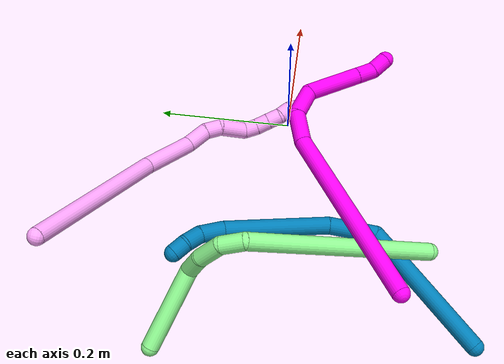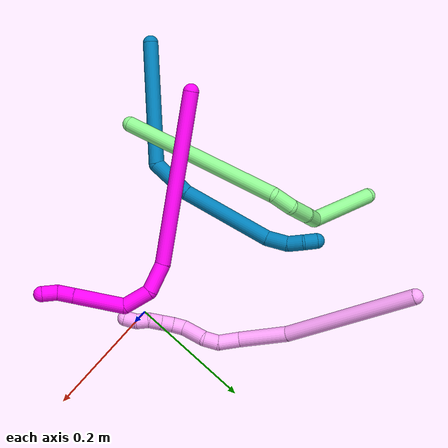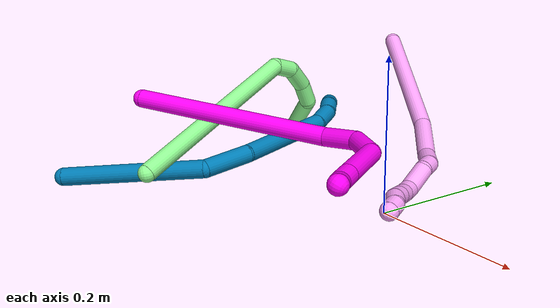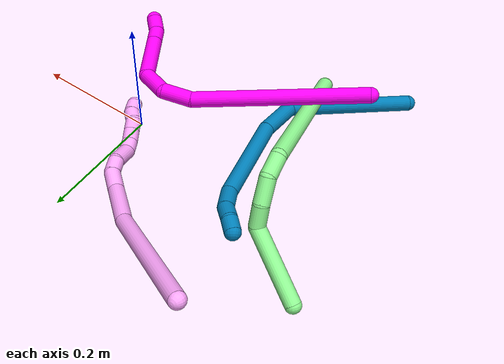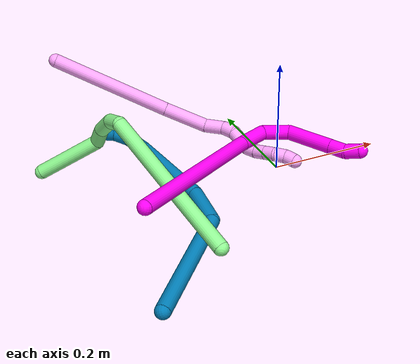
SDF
<sdf version="1.7">
 <world name="default">
  <model name="4">
   <static>0</static>
   <link name="4">
    <collision name="collision-cylinder-e_1_1_4">
     <pose>0.078679 -0.041576 -0.064684 2.57033 0.796873 1.92335</pose>
     <geometry><cylinder><radius>0.0125</radius><length>0.220027</length></cylinder></geometry>
     <surface>
      <friction><ode><mu>1.16</mu><mu2>1.16</mu2><slip1>0</slip1><slip2>0</slip2></ode></friction>
      <contact><ode><kp>1e+06</kp><kd>1</kd><max_vel>0</max_vel><min_depth>0.001</min_depth></ode></contact>
     </surface>
    </collision>
    <visual name="visual-cylinder-e_1_1_4">
     <pose>0.078679 -0.041576 -0.064684 2.57033 0.796873 1.92335</pose>
     <geometry><cylinder><radius>0.0125</radius><length>0.220027</length></cylinder></geometry>
     <material><ambient>1 0.65098 0.996078 1</ambient></material>
    </visual>
    <collision name="collision-cylinder-e_2_4_5">
     <pose>0.179528 -0.10147 -0.157598 2.566 0.582556 1.58351</pose>
     <geometry><cylinder><radius>0.0125</radius><length>0.080597</length></cylinder></geometry>
     <surface>
      <friction><ode><mu>1.16</mu><mu2>1.16</mu2><slip1>0</slip1><slip2>0</slip2></ode></friction>
      <contact><ode><kp>1e+06</kp><kd>1</kd><max_vel>0</max_vel><min_depth>0.001</min_depth></ode></contact>
     </surface>
    </collision>
    <visual name="visual-cylinder-e_2_4_5">
     <pose>0.179528 -0.10147 -0.157598 2.566 0.582556 1.58351</pose>
     <geometry><cylinder><radius>0.0125</radius><length>0.080597</length></cylinder></geometry>
     <material><ambient>1 0.65098 0.996078 1</ambient></material>
    </visual>
    <collision name="collision-cylinder-e_3_5_6">
     <pose>0.208251 -0.131795 -0.196781 2.31035 0.383174 0.828182</pose>
     <geometry><cylinder><radius>0.0125</radius><length>0.035049</length></cylinder></geometry>
     <surface>
      <friction><ode><mu>1.16</mu><mu2>1.16</mu2><slip1>0</slip1><slip2>0</slip2></ode></friction>
      <contact><ode><kp>1e+06</kp><kd>1</kd><max_vel>0</max_vel><min_depth>0.001</min_depth></ode></contact>
     </surface>
    </collision>
    <visual name="visual-cylinder-e_3_5_6">
     <pose>0.208251 -0.131795 -0.196781 2.31035 0.383174 0.828182</pose>
     <geometry><cylinder><radius>0.0125</radius><length>0.035049</length></cylinder></geometry>
     <material><ambient>1 0.65098 0.996078 1</ambient></material>
    </visual>
    <collision name="collision-cylinder-e_4_6_7">
     <pose>0.215924 -0.14954 -0.218199 2.64004 0.093663 0.361897</pose>
     <geometry><cylinder><radius>0.0125</radius><length>0.023972</length></cylinder></geometry>
     <surface>
      <friction><ode><mu>1.16</mu><mu2>1.16</mu2><slip1>0</slip1><slip2>0</slip2></ode></friction>
      <contact><ode><kp>1e+06</kp><kd>1</kd><max_vel>0</max_vel><min_depth>0.001</min_depth></ode></contact>
     </surface>
    </collision>
    <visual name="visual-cylinder-e_4_6_7">
     <pose>0.215924 -0.14954 -0.218199 2.64004 0.093663 0.361897</pose>
     <geometry><cylinder><radius>0.0125</radius><length>0.023972</length></cylinder></geometry>
     <material><ambient>1 0.65098 0.996078 1</ambient></material>
    </visual>
    <collision name="collision-cylinder-e_5_7_8">
     <pose>0.221472 -0.156904 -0.248244 3.05876 0.221641 2.42862</pose>
     <geometry><cylinder><radius>0.0125</radius><length>0.040283</length></cylinder></geometry>
     <surface>
      <friction><ode><mu>1.16</mu><mu2>1.16</mu2><slip1>0</slip1><slip2>0</slip2></ode></friction>
      <contact><ode><kp>1e+06</kp><kd>1</kd><max_vel>0</max_vel><min_depth>0.001</min_depth></ode></contact>
     </surface>
    </collision>
    <visual name="visual-cylinder-e_5_7_8">
     <pose>0.221472 -0.156904 -0.248244 3.05876 0.221641 2.42862</pose>
     <geometry><cylinder><radius>0.0125</radius><length>0.040283</length></cylinder></geometry>
     <material><ambient>1 0.65098 0.996078 1</ambient></material>
    </visual>
    <collision name="collision-cylinder-e_6_8_9">
     <pose>0.22655 -0.163722 -0.27635 2.59449 0.065027 0.230808</pose>
     <geometry><cylinder><radius>0.0125</radius><length>0.020005</length></cylinder></geometry>
     <surface>
      <friction><ode><mu>1.16</mu><mu2>1.16</mu2><slip1>0</slip1><slip2>0</slip2></ode></friction>
      <contact><ode><kp>1e+06</kp><kd>1</kd><max_vel>0</max_vel><min_depth>0.001</min_depth></ode></contact>
     </surface>
    </collision>
    <visual name="visual-cylinder-e_6_8_9">
     <pose>0.22655 -0.163722 -0.27635 2.59449 0.065027 0.230808</pose>
     <geometry><cylinder><radius>0.0125</radius><length>0.020005</length></cylinder></geometry>
     <material><ambient>1 0.65098 0.996078 1</ambient></material>
    </visual>
    <collision name="collision-cylinder-e_7_9_10">
     <pose>0.227269 -0.175505 -0.292435 2.42463 0.006933 0.018504</pose>
     <geometry><cylinder><radius>0.0125</radius><length>0.020061</length></cylinder></geometry>
     <surface>
      <friction><ode><mu>1.16</mu><mu2>1.16</mu2><slip1>0</slip1><slip2>0</slip2></ode></friction>
      <contact><ode><kp>1e+06</kp><kd>1</kd><max_vel>0</max_vel><min_depth>0.001</min_depth></ode></contact>
     </surface>
    </collision>
    <visual name="visual-cylinder-e_7_9_10">
     <pose>0.227269 -0.175505 -0.292435 2.42463 0.006933 0.018504</pose>
     <geometry><cylinder><radius>0.0125</radius><length>0.020061</length></cylinder></geometry>
     <material><ambient>1 0.65098 0.996078 1</ambient></material>
    </visual>
    <collision name="collision-cylinder-e_8_10_11">
     <pose>0.227308 -0.188627 -0.30757 2.42998 -0.003076 -0.008278</pose>
     <geometry><cylinder><radius>0.0125</radius><length>0.020002</length></cylinder></geometry>
     <surface>
      <friction><ode><mu>1.16</mu><mu2>1.16</mu2><slip1>0</slip1><slip2>0</slip2></ode></friction>
      <contact><ode><kp>1e+06</kp><kd>1</kd><max_vel>0</max_vel><min_depth>0.001</min_depth></ode></contact>
     </surface>
    </collision>
    <visual name="visual-cylinder-e_8_10_11">
     <pose>0.227308 -0.188627 -0.30757 2.42998 -0.003076 -0.008278</pose>
     <geometry><cylinder><radius>0.0125</radius><length>0.020002</length></cylinder></geometry>
     <material><ambient>1 0.65098 0.996078 1</ambient></material>
    </visual>
    <collision name="collision-cylinder-e_9_11_12">
     <pose>0.230968 -0.201612 -0.321833 2.37405 0.377933 0.884661</pose>
     <geometry><cylinder><radius>0.0125</radius><length>0.02</length></cylinder></geometry>
     <surface>
      <friction><ode><mu>1.16</mu><mu2>1.16</mu2><slip1>0</slip1><slip2>0</slip2></ode></friction>
      <contact><ode><kp>1e+06</kp><kd>1</kd><max_vel>0</max_vel><min_depth>0.001</min_depth></ode></contact>
     </surface>
    </collision>
    <visual name="visual-cylinder-e_9_11_12">
     <pose>0.230968 -0.201612 -0.321833 2.37405 0.377933 0.884661</pose>
     <geometry><cylinder><radius>0.0125</radius><length>0.02</length></cylinder></geometry>
     <material><ambient>1 0.65098 0.996078 1</ambient></material>
    </visual>
    <collision name="collision-cylinder-e_10_12_2">
     <pose>0.236213 -0.212472 -0.337364 2.67935 0.156136 0.641857</pose>
     <geometry><cylinder><radius>0.0125</radius><length>0.020003</length></cylinder></geometry>
     <surface>
      <friction><ode><mu>1.16</mu><mu2>1.16</mu2><slip1>0</slip1><slip2>0</slip2></ode></friction>
      <contact><ode><kp>1e+06</kp><kd>1</kd><max_vel>0</max_vel><min_depth>0.001</min_depth></ode></contact>
     </surface>
    </collision>
    <visual name="visual-cylinder-e_10_12_2">
     <pose>0.236213 -0.212472 -0.337364 2.67935 0.156136 0.641857</pose>
     <geometry><cylinder><radius>0.0125</radius><length>0.020003</length></cylinder></geometry>
     <material><ambient>1 0.65098 0.996078 1</ambient></material>
    </visual>
    <collision name="collision-sphere-2">
     <pose>0.237768 -0.216878 -0.346208 0 -0 0</pose>
     <geometry><sphere><radius>0.0125</radius></sphere></geometry>
     <surface>
      <friction><ode><mu>1.16</mu><mu2>1.16</mu2><slip1>0</slip1><slip2>0</slip2></ode></friction>
      <contact><ode><kp>1e+06</kp><kd>1</kd><max_vel>0</max_vel><min_depth>0.001</min_depth></ode></contact>
     </surface>
    </collision>
    <visual name="visual-sphere-2">
     <pose>0.237768 -0.216878 -0.346208 0 -0 0</pose>
     <geometry><sphere><radius>0.0125</radius></sphere></geometry>
     <material><ambient>1 0.65098 0.996078 1</ambient></material>
    </visual>
    <collision name="collision-sphere-12">
     <pose>0.234658 -0.208066 -0.328521 0 -0 0</pose>
     <geometry><sphere><radius>0.0125</radius></sphere></geometry>
     <surface>
      <friction><ode><mu>1.16</mu><mu2>1.16</mu2><slip1>0</slip1><slip2>0</slip2></ode></friction>
      <contact><ode><kp>1e+06</kp><kd>1</kd><max_vel>0</max_vel><min_depth>0.001</min_depth></ode></contact>
     </surface>
    </collision>
    <visual name="visual-sphere-12">
     <pose>0.234658 -0.208066 -0.328521 0 -0 0</pose>
     <geometry><sphere><radius>0.0125</radius></sphere></geometry>
     <material><ambient>1 0.65098 0.996078 1</ambient></material>
    </visual>
    <collision name="collision-sphere-11">
     <pose>0.227277 -0.195158 -0.315144 0 -0 0</pose>
     <geometry><sphere><radius>0.0125</radius></sphere></geometry>
     <surface>
      <friction><ode><mu>1.16</mu><mu2>1.16</mu2><slip1>0</slip1><slip2>0</slip2></ode></friction>
      <contact><ode><kp>1e+06</kp><kd>1</kd><max_vel>0</max_vel><min_depth>0.001</min_depth></ode></contact>
     </surface>
    </collision>
    <visual name="visual-sphere-11">
     <pose>0.227277 -0.195158 -0.315144 0 -0 0</pose>
     <geometry><sphere><radius>0.0125</radius></sphere></geometry>
     <material><ambient>1 0.65098 0.996078 1</ambient></material>
    </visual>
    <collision name="collision-sphere-10">
     <pose>0.227339 -0.182096 -0.299996 0 -0 0</pose>
     <geometry><sphere><radius>0.0125</radius></sphere></geometry>
     <surface>
      <friction><ode><mu>1.16</mu><mu2>1.16</mu2><slip1>0</slip1><slip2>0</slip2></ode></friction>
      <contact><ode><kp>1e+06</kp><kd>1</kd><max_vel>0</max_vel><min_depth>0.001</min_depth></ode></contact>
     </surface>
    </collision>
    <visual name="visual-sphere-10">
     <pose>0.227339 -0.182096 -0.299996 0 -0 0</pose>
     <geometry><sphere><radius>0.0125</radius></sphere></geometry>
     <material><ambient>1 0.65098 0.996078 1</ambient></material>
    </visual>
    <collision name="collision-sphere-9">
     <pose>0.2272 -0.168914 -0.284874 0 -0 0</pose>
     <geometry><sphere><radius>0.0125</radius></sphere></geometry>
     <surface>
      <friction><ode><mu>1.16</mu><mu2>1.16</mu2><slip1>0</slip1><slip2>0</slip2></ode></friction>
      <contact><ode><kp>1e+06</kp><kd>1</kd><max_vel>0</max_vel><min_depth>0.001</min_depth></ode></contact>
     </surface>
    </collision>
    <visual name="visual-sphere-9">
     <pose>0.2272 -0.168914 -0.284874 0 -0 0</pose>
     <geometry><sphere><radius>0.0125</radius></sphere></geometry>
     <material><ambient>1 0.65098 0.996078 1</ambient></material>
    </visual>
    <collision name="collision-sphere-4">
     <pose>0.157358 -0.083152 -0.129369 0 -0 0</pose>
     <geometry><sphere><radius>0.0125</radius></sphere></geometry>
     <surface>
      <friction><ode><mu>1.16</mu><mu2>1.16</mu2><slip1>0</slip1><slip2>0</slip2></ode></friction>
      <contact><ode><kp>1e+06</kp><kd>1</kd><max_vel>0</max_vel><min_depth>0.001</min_depth></ode></contact>
     </surface>
    </collision>
    <visual name="visual-sphere-4">
     <pose>0.157358 -0.083152 -0.129369 0 -0 0</pose>
     <geometry><sphere><radius>0.0125</radius></sphere></geometry>
     <material><ambient>1 0.65098 0.996078 1</ambient></material>
    </visual>
    <collision name="collision-sphere-1">
     <geometry><sphere><radius>0.0125</radius></sphere></geometry>
     <surface>
      <friction><ode><mu>1.16</mu><mu2>1.16</mu2><slip1>0</slip1><slip2>0</slip2></ode></friction>
      <contact><ode><kp>1e+06</kp><kd>1</kd><max_vel>0</max_vel><min_depth>0.001</min_depth></ode></contact>
     </surface>
    </collision>
    <visual name="visual-sphere-1">
     <geometry><sphere><radius>0.0125</radius></sphere></geometry>
     <material><ambient>1 0.65098 0.996078 1</ambient></material>
    </visual>
    <collision name="collision-sphere-8">
     <pose>0.2259 -0.158529 -0.267825 0 -0 0</pose>
     <geometry><sphere><radius>0.0125</radius></sphere></geometry>
     <surface>
      <friction><ode><mu>1.16</mu><mu2>1.16</mu2><slip1>0</slip1><slip2>0</slip2></ode></friction>
      <contact><ode><kp>1e+06</kp><kd>1</kd><max_vel>0</max_vel><min_depth>0.001</min_depth></ode></contact>
     </surface>
    </collision>
    <visual name="visual-sphere-8">
     <pose>0.2259 -0.158529 -0.267825 0 -0 0</pose>
     <geometry><sphere><radius>0.0125</radius></sphere></geometry>
     <material><ambient>1 0.65098 0.996078 1</ambient></material>
    </visual>
    <collision name="collision-sphere-5">
     <pose>0.201699 -0.119788 -0.185827 0 -0 0</pose>
     <geometry><sphere><radius>0.0125</radius></sphere></geometry>
     <surface>
      <friction><ode><mu>1.16</mu><mu2>1.16</mu2><slip1>0</slip1><slip2>0</slip2></ode></friction>
      <contact><ode><kp>1e+06</kp><kd>1</kd><max_vel>0</max_vel><min_depth>0.001</min_depth></ode></contact>
     </surface>
    </collision>
    <visual name="visual-sphere-5">
     <pose>0.201699 -0.119788 -0.185827 0 -0 0</pose>
     <geometry><sphere><radius>0.0125</radius></sphere></geometry>
     <material><ambient>1 0.65098 0.996078 1</ambient></material>
    </visual>
    <collision name="collision-sphere-6">
     <pose>0.214803 -0.143803 -0.207736 0 -0 0</pose>
     <geometry><sphere><radius>0.0125</radius></sphere></geometry>
     <surface>
      <friction><ode><mu>1.16</mu><mu2>1.16</mu2><slip1>0</slip1><slip2>0</slip2></ode></friction>
      <contact><ode><kp>1e+06</kp><kd>1</kd><max_vel>0</max_vel><min_depth>0.001</min_depth></ode></contact>
     </surface>
    </collision>
    <visual name="visual-sphere-6">
     <pose>0.214803 -0.143803 -0.207736 0 -0 0</pose>
     <geometry><sphere><radius>0.0125</radius></sphere></geometry>
     <material><ambient>1 0.65098 0.996078 1</ambient></material>
    </visual>
    <collision name="collision-sphere-7">
     <pose>0.217045 -0.155278 -0.228663 0 -0 0</pose>
     <geometry><sphere><radius>0.0125</radius></sphere></geometry>
     <surface>
      <friction><ode><mu>1.16</mu><mu2>1.16</mu2><slip1>0</slip1><slip2>0</slip2></ode></friction>
      <contact><ode><kp>1e+06</kp><kd>1</kd><max_vel>0</max_vel><min_depth>0.001</min_depth></ode></contact>
     </surface>
    </collision>
    <visual name="visual-sphere-7">
     <pose>0.217045 -0.155278 -0.228663 0 -0 0</pose>
     <geometry><sphere><radius>0.0125</radius></sphere></geometry>
     <material><ambient>1 0.65098 0.996078 1</ambient></material>
    </visual>
    <inertial>
     <pose>0.15232 -0.101404 -0.159588 0 -0 0</pose>
     <mass>0.5</mass>
     <inertia>
      <ixx>0.000446</ixx>
      <ixy>0</ixy>
      <ixz>0</ixz>
      <iyy>0.001219</iyy>
      <iyz>0</iyz>
      <izz>-0.000329</izz>
     </inertia>
    </inertial>
   </link>
   <pose>-0.307539 0.288501 0.148064 -1.09011 0.721042 0.376698</pose>
  </model>
  <model name="9">
   <static>0</static>
   <link name="9">
    <collision name="collision-cylinder-e_1_1_4">
     <pose>-0.089987 0.044322 0.010723 -1.33342 -1.10176 0.900583</pose>
     <geometry><cylinder><radius>0.0125</radius><length>0.201763</length></cylinder></geometry>
     <surface>
      <friction><ode><mu>1.16</mu><mu2>1.16</mu2><slip1>0</slip1><slip2>0</slip2></ode></friction>
      <contact><ode><kp>1e+06</kp><kd>1</kd><max_vel>0</max_vel><min_depth>0.001</min_depth></ode></contact>
     </surface>
    </collision>
    <visual name="visual-cylinder-e_1_1_4">
     <pose>-0.089987 0.044322 0.010723 -1.33342 -1.10176 0.900583</pose>
     <geometry><cylinder><radius>0.0125</radius><length>0.201763</length></cylinder></geometry>
     <material><ambient>0 0.490196 0.709804 1</ambient></material>
    </visual>
    <collision name="collision-cylinder-e_2_4_5">
     <pose>-0.194229 0.110634 0.043094 -0.793251 -0.432786 0.183626</pose>
     <geometry><cylinder><radius>0.0125</radius><length>0.067982</length></cylinder></geometry>
     <surface>
      <friction><ode><mu>1.16</mu><mu2>1.16</mu2><slip1>0</slip1><slip2>0</slip2></ode></friction>
      <contact><ode><kp>1e+06</kp><kd>1</kd><max_vel>0</max_vel><min_depth>0.001</min_depth></ode></contact>
     </surface>
    </collision>
    <visual name="visual-cylinder-e_2_4_5">
     <pose>-0.194229 0.110634 0.043094 -0.793251 -0.432786 0.183626</pose>
     <geometry><cylinder><radius>0.0125</radius><length>0.067982</length></cylinder></geometry>
     <material><ambient>0 0.490196 0.709804 1</ambient></material>
    </visual>
    <collision name="collision-cylinder-e_3_5_6">
     <pose>-0.225002 0.177992 0.121267 -0.676324 -0.224055 0.079084</pose>
     <geometry><cylinder><radius>0.0125</radius><length>0.148677</length></cylinder></geometry>
     <surface>
      <friction><ode><mu>1.16</mu><mu2>1.16</mu2><slip1>0</slip1><slip2>0</slip2></ode></friction>
      <contact><ode><kp>1e+06</kp><kd>1</kd><max_vel>0</max_vel><min_depth>0.001</min_depth></ode></contact>
     </surface>
    </collision>
    <visual name="visual-cylinder-e_3_5_6">
     <pose>-0.225002 0.177992 0.121267 -0.676324 -0.224055 0.079084</pose>
     <geometry><cylinder><radius>0.0125</radius><length>0.148677</length></cylinder></geometry>
     <material><ambient>0 0.490196 0.709804 1</ambient></material>
    </visual>
    <collision name="collision-cylinder-e_4_6_7">
     <pose>-0.240591 0.235403 0.190644 -0.752972 0.052635 -0.020813</pose>
     <geometry><cylinder><radius>0.0125</radius><length>0.035272</length></cylinder></geometry>
     <surface>
      <friction><ode><mu>1.16</mu><mu2>1.16</mu2><slip1>0</slip1><slip2>0</slip2></ode></friction>
      <contact><ode><kp>1e+06</kp><kd>1</kd><max_vel>0</max_vel><min_depth>0.001</min_depth></ode></contact>
     </surface>
    </collision>
    <visual name="visual-cylinder-e_4_6_7">
     <pose>-0.240591 0.235403 0.190644 -0.752972 0.052635 -0.020813</pose>
     <geometry><cylinder><radius>0.0125</radius><length>0.035272</length></cylinder></geometry>
     <material><ambient>0 0.490196 0.709804 1</ambient></material>
    </visual>
    <collision name="collision-cylinder-e_5_7_8">
     <pose>-0.234719 0.25471 0.212593 -0.673678 0.401611 -0.142319</pose>
     <geometry><cylinder><radius>0.0125</radius><length>0.025298</length></cylinder></geometry>
     <surface>
      <friction><ode><mu>1.16</mu><mu2>1.16</mu2><slip1>0</slip1><slip2>0</slip2></ode></friction>
      <contact><ode><kp>1e+06</kp><kd>1</kd><max_vel>0</max_vel><min_depth>0.001</min_depth></ode></contact>
     </surface>
    </collision>
    <visual name="visual-cylinder-e_5_7_8">
     <pose>-0.234719 0.25471 0.212593 -0.673678 0.401611 -0.142319</pose>
     <geometry><cylinder><radius>0.0125</radius><length>0.025298</length></cylinder></geometry>
     <material><ambient>0 0.490196 0.709804 1</ambient></material>
    </visual>
    <collision name="collision-cylinder-e_6_8_2">
     <pose>-0.226307 0.265254 0.231049 -0.337278 0.336389 -0.057802</pose>
     <geometry><cylinder><radius>0.0125</radius><length>0.021007</length></cylinder></geometry>
     <surface>
      <friction><ode><mu>1.16</mu><mu2>1.16</mu2><slip1>0</slip1><slip2>0</slip2></ode></friction>
      <contact><ode><kp>1e+06</kp><kd>1</kd><max_vel>0</max_vel><min_depth>0.001</min_depth></ode></contact>
     </surface>
    </collision>
    <visual name="visual-cylinder-e_6_8_2">
     <pose>-0.226307 0.265254 0.231049 -0.337278 0.336389 -0.057802</pose>
     <geometry><cylinder><radius>0.0125</radius><length>0.021007</length></cylinder></geometry>
     <material><ambient>0 0.490196 0.709804 1</ambient></material>
    </visual>
    <collision name="collision-sphere-2">
     <pose>-0.22284 0.268535 0.240405 0 -0 0</pose>
     <geometry><sphere><radius>0.0125</radius></sphere></geometry>
     <surface>
      <friction><ode><mu>1.16</mu><mu2>1.16</mu2><slip1>0</slip1><slip2>0</slip2></ode></friction>
      <contact><ode><kp>1e+06</kp><kd>1</kd><max_vel>0</max_vel><min_depth>0.001</min_depth></ode></contact>
     </surface>
    </collision>
    <visual name="visual-sphere-2">
     <pose>-0.22284 0.268535 0.240405 0 -0 0</pose>
     <geometry><sphere><radius>0.0125</radius></sphere></geometry>
     <material><ambient>0 0.490196 0.709804 1</ambient></material>
    </visual>
    <collision name="collision-sphere-4">
     <pose>-0.179973 0.088645 0.021446 0 -0 0</pose>
     <geometry><sphere><radius>0.0125</radius></sphere></geometry>
     <surface>
      <friction><ode><mu>1.16</mu><mu2>1.16</mu2><slip1>0</slip1><slip2>0</slip2></ode></friction>
      <contact><ode><kp>1e+06</kp><kd>1</kd><max_vel>0</max_vel><min_depth>0.001</min_depth></ode></contact>
     </surface>
    </collision>
    <visual name="visual-sphere-4">
     <pose>-0.179973 0.088645 0.021446 0 -0 0</pose>
     <geometry><sphere><radius>0.0125</radius></sphere></geometry>
     <material><ambient>0 0.490196 0.709804 1</ambient></material>
    </visual>
    <collision name="collision-sphere-1">
     <geometry><sphere><radius>0.0125</radius></sphere></geometry>
     <surface>
      <friction><ode><mu>1.16</mu><mu2>1.16</mu2><slip1>0</slip1><slip2>0</slip2></ode></friction>
      <contact><ode><kp>1e+06</kp><kd>1</kd><max_vel>0</max_vel><min_depth>0.001</min_depth></ode></contact>
     </surface>
    </collision>
    <visual name="visual-sphere-1">
     <geometry><sphere><radius>0.0125</radius></sphere></geometry>
     <material><ambient>0 0.490196 0.709804 1</ambient></material>
    </visual>
    <collision name="collision-sphere-8">
     <pose>-0.229774 0.261973 0.221692 0 -0 0</pose>
     <geometry><sphere><radius>0.0125</radius></sphere></geometry>
     <surface>
      <friction><ode><mu>1.16</mu><mu2>1.16</mu2><slip1>0</slip1><slip2>0</slip2></ode></friction>
      <contact><ode><kp>1e+06</kp><kd>1</kd><max_vel>0</max_vel><min_depth>0.001</min_depth></ode></contact>
     </surface>
    </collision>
    <visual name="visual-sphere-8">
     <pose>-0.229774 0.261973 0.221692 0 -0 0</pose>
     <geometry><sphere><radius>0.0125</radius></sphere></geometry>
     <material><ambient>0 0.490196 0.709804 1</ambient></material>
    </visual>
    <collision name="collision-sphere-5">
     <pose>-0.208485 0.132624 0.064741 0 -0 0</pose>
     <geometry><sphere><radius>0.0125</radius></sphere></geometry>
     <surface>
      <friction><ode><mu>1.16</mu><mu2>1.16</mu2><slip1>0</slip1><slip2>0</slip2></ode></friction>
      <contact><ode><kp>1e+06</kp><kd>1</kd><max_vel>0</max_vel><min_depth>0.001</min_depth></ode></contact>
     </surface>
    </collision>
    <visual name="visual-sphere-5">
     <pose>-0.208485 0.132624 0.064741 0 -0 0</pose>
     <geometry><sphere><radius>0.0125</radius></sphere></geometry>
     <material><ambient>0 0.490196 0.709804 1</ambient></material>
    </visual>
    <collision name="collision-sphere-6">
     <pose>-0.241519 0.22336 0.177793 0 -0 0</pose>
     <geometry><sphere><radius>0.0125</radius></sphere></geometry>
     <surface>
      <friction><ode><mu>1.16</mu><mu2>1.16</mu2><slip1>0</slip1><slip2>0</slip2></ode></friction>
      <contact><ode><kp>1e+06</kp><kd>1</kd><max_vel>0</max_vel><min_depth>0.001</min_depth></ode></contact>
     </surface>
    </collision>
    <visual name="visual-sphere-6">
     <pose>-0.241519 0.22336 0.177793 0 -0 0</pose>
     <geometry><sphere><radius>0.0125</radius></sphere></geometry>
     <material><ambient>0 0.490196 0.709804 1</ambient></material>
    </visual>
    <collision name="collision-sphere-7">
     <pose>-0.239663 0.247446 0.203494 0 -0 0</pose>
     <geometry><sphere><radius>0.0125</radius></sphere></geometry>
     <surface>
      <friction><ode><mu>1.16</mu><mu2>1.16</mu2><slip1>0</slip1><slip2>0</slip2></ode></friction>
      <contact><ode><kp>1e+06</kp><kd>1</kd><max_vel>0</max_vel><min_depth>0.001</min_depth></ode></contact>
     </surface>
    </collision>
    <visual name="visual-sphere-7">
     <pose>-0.239663 0.247446 0.203494 0 -0 0</pose>
     <geometry><sphere><radius>0.0125</radius></sphere></geometry>
     <material><ambient>0 0.490196 0.709804 1</ambient></material>
    </visual>
    <inertial>
     <pose>-0.167982 0.126493 0.080158 0 -0 0</pose>
     <mass>0.5</mass>
     <inertia>
      <ixx>0.000754</ixx>
      <ixy>0</ixy>
      <ixz>0</ixz>
      <iyy>0.001113</iyy>
      <iyz>0</iyz>
      <izz>0.00021</izz>
     </inertia>
    </inertial>
   </link>
   <pose>-0.333806 -0.288501 0.011809 2.08923 -0.236943 -2.66682</pose>
  </model>
  <model name="10">
   <static>0</static>
   <link name="10">
    <collision name="collision-cylinder-e_1_1_4">
     <pose>0.018098 0.038619 -0.129779 -2.85236 0.132873 -0.857105</pose>
     <geometry><cylinder><radius>0.0125</radius><length>0.273215</length></cylinder></geometry>
     <surface>
      <friction><ode><mu>1.16</mu><mu2>1.16</mu2><slip1>0</slip1><slip2>0</slip2></ode></friction>
      <contact><ode><kp>1e+06</kp><kd>1</kd><max_vel>0</max_vel><min_depth>0.001</min_depth></ode></contact>
     </surface>
    </collision>
    <visual name="visual-cylinder-e_1_1_4">
     <pose>0.018098 0.038619 -0.129779 -2.85236 0.132873 -0.857105</pose>
     <geometry><cylinder><radius>0.0125</radius><length>0.273215</length></cylinder></geometry>
     <material><ambient>1 0 0.964706 1</ambient></material>
    </visual>
    <collision name="collision-cylinder-e_2_4_5">
     <pose>0.045965 0.080291 -0.281054 -3.00046 0.422832 -2.50531</pose>
     <geometry><cylinder><radius>0.0125</radius><length>0.047616</length></cylinder></geometry>
     <surface>
      <friction><ode><mu>1.16</mu><mu2>1.16</mu2><slip1>0</slip1><slip2>0</slip2></ode></friction>
      <contact><ode><kp>1e+06</kp><kd>1</kd><max_vel>0</max_vel><min_depth>0.001</min_depth></ode></contact>
     </surface>
    </collision>
    <visual name="visual-cylinder-e_2_4_5">
     <pose>0.045965 0.080291 -0.281054 -3.00046 0.422832 -2.50531</pose>
     <geometry><cylinder><radius>0.0125</radius><length>0.047616</length></cylinder></geometry>
     <material><ambient>1 0 0.964706 1</ambient></material>
    </visual>
    <collision name="collision-cylinder-e_3_5_6">
     <pose>0.067347 0.07316 -0.319403 2.59801 0.532799 1.54976</pose>
     <geometry><cylinder><radius>0.0125</radius><length>0.045723</length></cylinder></geometry>
     <surface>
      <friction><ode><mu>1.16</mu><mu2>1.16</mu2><slip1>0</slip1><slip2>0</slip2></ode></friction>
      <contact><ode><kp>1e+06</kp><kd>1</kd><max_vel>0</max_vel><min_depth>0.001</min_depth></ode></contact>
     </surface>
    </collision>
    <visual name="visual-cylinder-e_3_5_6">
     <pose>0.067347 0.07316 -0.319403 2.59801 0.532799 1.54976</pose>
     <geometry><cylinder><radius>0.0125</radius><length>0.045723</length></cylinder></geometry>
     <material><ambient>1 0 0.964706 1</ambient></material>
    </visual>
    <collision name="collision-cylinder-e_4_6_7">
     <pose>0.100092 0.028896 -0.342211 1.74375 0.548351 0.64588</pose>
     <geometry><cylinder><radius>0.0125</radius><length>0.081077</length></cylinder></geometry>
     <surface>
      <friction><ode><mu>1.16</mu><mu2>1.16</mu2><slip1>0</slip1><slip2>0</slip2></ode></friction>
      <contact><ode><kp>1e+06</kp><kd>1</kd><max_vel>0</max_vel><min_depth>0.001</min_depth></ode></contact>
     </surface>
    </collision>
    <visual name="visual-cylinder-e_4_6_7">
     <pose>0.100092 0.028896 -0.342211 1.74375 0.548351 0.64588</pose>
     <geometry><cylinder><radius>0.0125</radius><length>0.081077</length></cylinder></geometry>
     <material><ambient>1 0 0.964706 1</ambient></material>
    </visual>
    <collision name="collision-cylinder-e_5_7_8">
     <pose>0.128246 -0.016489 -0.350183 1.74746 0.548789 0.648658</pose>
     <geometry><cylinder><radius>0.0125</radius><length>0.026924</length></cylinder></geometry>
     <surface>
      <friction><ode><mu>1.16</mu><mu2>1.16</mu2><slip1>0</slip1><slip2>0</slip2></ode></friction>
      <contact><ode><kp>1e+06</kp><kd>1</kd><max_vel>0</max_vel><min_depth>0.001</min_depth></ode></contact>
     </surface>
    </collision>
    <visual name="visual-cylinder-e_5_7_8">
     <pose>0.128246 -0.016489 -0.350183 1.74746 0.548789 0.648658</pose>
     <geometry><cylinder><radius>0.0125</radius><length>0.026924</length></cylinder></geometry>
     <material><ambient>1 0 0.964706 1</ambient></material>
    </visual>
    <collision name="collision-cylinder-e_6_8_2">
     <pose>0.14474 -0.035344 -0.356098 2.04731 0.839696 1.26477</pose>
     <geometry><cylinder><radius>0.0125</radius><length>0.025445</length></cylinder></geometry>
     <surface>
      <friction><ode><mu>1.16</mu><mu2>1.16</mu2><slip1>0</slip1><slip2>0</slip2></ode></friction>
      <contact><ode><kp>1e+06</kp><kd>1</kd><max_vel>0</max_vel><min_depth>0.001</min_depth></ode></contact>
     </surface>
    </collision>
    <visual name="visual-cylinder-e_6_8_2">
     <pose>0.14474 -0.035344 -0.356098 2.04731 0.839696 1.26477</pose>
     <geometry><cylinder><radius>0.0125</radius><length>0.025445</length></cylinder></geometry>
     <material><ambient>1 0 0.964706 1</ambient></material>
    </visual>
    <collision name="collision-sphere-2">
     <pose>0.154211 -0.042892 -0.359995 0 -0 0</pose>
     <geometry><sphere><radius>0.0125</radius></sphere></geometry>
     <surface>
      <friction><ode><mu>1.16</mu><mu2>1.16</mu2><slip1>0</slip1><slip2>0</slip2></ode></friction>
      <contact><ode><kp>1e+06</kp><kd>1</kd><max_vel>0</max_vel><min_depth>0.001</min_depth></ode></contact>
     </surface>
    </collision>
    <visual name="visual-sphere-2">
     <pose>0.154211 -0.042892 -0.359995 0 -0 0</pose>
     <geometry><sphere><radius>0.0125</radius></sphere></geometry>
     <material><ambient>1 0 0.964706 1</ambient></material>
    </visual>
    <collision name="collision-sphere-4">
     <pose>0.036196 0.077237 -0.259559 0 -0 0</pose>
     <geometry><sphere><radius>0.0125</radius></sphere></geometry>
     <surface>
      <friction><ode><mu>1.16</mu><mu2>1.16</mu2><slip1>0</slip1><slip2>0</slip2></ode></friction>
      <contact><ode><kp>1e+06</kp><kd>1</kd><max_vel>0</max_vel><min_depth>0.001</min_depth></ode></contact>
     </surface>
    </collision>
    <visual name="visual-sphere-4">
     <pose>0.036196 0.077237 -0.259559 0 -0 0</pose>
     <geometry><sphere><radius>0.0125</radius></sphere></geometry>
     <material><ambient>1 0 0.964706 1</ambient></material>
    </visual>
    <collision name="collision-sphere-1">
     <geometry><sphere><radius>0.0125</radius></sphere></geometry>
     <surface>
      <friction><ode><mu>1.16</mu><mu2>1.16</mu2><slip1>0</slip1><slip2>0</slip2></ode></friction>
      <contact><ode><kp>1e+06</kp><kd>1</kd><max_vel>0</max_vel><min_depth>0.001</min_depth></ode></contact>
     </surface>
    </collision>
    <visual name="visual-sphere-1">
     <geometry><sphere><radius>0.0125</radius></sphere></geometry>
     <material><ambient>1 0 0.964706 1</ambient></material>
    </visual>
    <collision name="collision-sphere-8">
     <pose>0.135269 -0.027796 -0.352202 0 -0 0</pose>
     <geometry><sphere><radius>0.0125</radius></sphere></geometry>
     <surface>
      <friction><ode><mu>1.16</mu><mu2>1.16</mu2><slip1>0</slip1><slip2>0</slip2></ode></friction>
      <contact><ode><kp>1e+06</kp><kd>1</kd><max_vel>0</max_vel><min_depth>0.001</min_depth></ode></contact>
     </surface>
    </collision>
    <visual name="visual-sphere-8">
     <pose>0.135269 -0.027796 -0.352202 0 -0 0</pose>
     <geometry><sphere><radius>0.0125</radius></sphere></geometry>
     <material><ambient>1 0 0.964706 1</ambient></material>
    </visual>
    <collision name="collision-sphere-5">
     <pose>0.055735 0.083345 -0.302549 0 -0 0</pose>
     <geometry><sphere><radius>0.0125</radius></sphere></geometry>
     <surface>
      <friction><ode><mu>1.16</mu><mu2>1.16</mu2><slip1>0</slip1><slip2>0</slip2></ode></friction>
      <contact><ode><kp>1e+06</kp><kd>1</kd><max_vel>0</max_vel><min_depth>0.001</min_depth></ode></contact>
     </surface>
    </collision>
    <visual name="visual-sphere-5">
     <pose>0.055735 0.083345 -0.302549 0 -0 0</pose>
     <geometry><sphere><radius>0.0125</radius></sphere></geometry>
     <material><ambient>1 0 0.964706 1</ambient></material>
    </visual>
    <collision name="collision-sphere-6">
     <pose>0.07896 0.062975 -0.336257 0 -0 0</pose>
     <geometry><sphere><radius>0.0125</radius></sphere></geometry>
     <surface>
      <friction><ode><mu>1.16</mu><mu2>1.16</mu2><slip1>0</slip1><slip2>0</slip2></ode></friction>
      <contact><ode><kp>1e+06</kp><kd>1</kd><max_vel>0</max_vel><min_depth>0.001</min_depth></ode></contact>
     </surface>
    </collision>
    <visual name="visual-sphere-6">
     <pose>0.07896 0.062975 -0.336257 0 -0 0</pose>
     <geometry><sphere><radius>0.0125</radius></sphere></geometry>
     <material><ambient>1 0 0.964706 1</ambient></material>
    </visual>
    <collision name="collision-sphere-7">
     <pose>0.121224 -0.005183 -0.348165 0 -0 0</pose>
     <geometry><sphere><radius>0.0125</radius></sphere></geometry>
     <surface>
      <friction><ode><mu>1.16</mu><mu2>1.16</mu2><slip1>0</slip1><slip2>0</slip2></ode></friction>
      <contact><ode><kp>1e+06</kp><kd>1</kd><max_vel>0</max_vel><min_depth>0.001</min_depth></ode></contact>
     </surface>
    </collision>
    <visual name="visual-sphere-7">
     <pose>0.121224 -0.005183 -0.348165 0 -0 0</pose>
     <geometry><sphere><radius>0.0125</radius></sphere></geometry>
     <material><ambient>1 0 0.964706 1</ambient></material>
    </visual>
    <inertial>
     <pose>0.050927 0.037438 -0.219358 0 -0 0</pose>
     <mass>0.5</mass>
     <inertia>
      <ixx>-0.000103</ixx>
      <ixy>0</ixy>
      <ixz>0</ixz>
      <iyy>-0.002258</iyy>
      <iyz>0</iyz>
      <izz>-0.000729</izz>
     </inertia>
    </inertial>
   </link>
   <pose>-0.3124 -0.175605 0.111051 0.9245 -0.942917 -0.633614</pose>
  </model>
  <model name="13">
   <static>0</static>
   <link name="13">
    <collision name="collision-cylinder-e_1_1_4">
     <pose>0.002152 -0.05822 0.005141 1.48272 0.036797 0.033691</pose>
     <geometry><cylinder><radius>0.0125</radius><length>0.116973</length></cylinder></geometry>
     <surface>
      <friction><ode><mu>1.16</mu><mu2>1.16</mu2><slip1>0</slip1><slip2>0</slip2></ode></friction>
      <contact><ode><kp>1e+06</kp><kd>1</kd><max_vel>0</max_vel><min_depth>0.001</min_depth></ode></contact>
     </surface>
    </collision>
    <visual name="visual-cylinder-e_1_1_4">
     <pose>0.002152 -0.05822 0.005141 1.48272 0.036797 0.033691</pose>
     <geometry><cylinder><radius>0.0125</radius><length>0.116973</length></cylinder></geometry>
     <material><ambient>0.564706 0.984314 0.572549 1</ambient></material>
    </visual>
    <collision name="collision-cylinder-e_2_4_5">
     <pose>-0.006049 -0.12979 0.006568 1.8422 -0.641658 -0.824665</pose>
     <geometry><cylinder><radius>0.0125</radius><length>0.034594</length></cylinder></geometry>
     <surface>
      <friction><ode><mu>1.16</mu><mu2>1.16</mu2><slip1>0</slip1><slip2>0</slip2></ode></friction>
      <contact><ode><kp>1e+06</kp><kd>1</kd><max_vel>0</max_vel><min_depth>0.001</min_depth></ode></contact>
     </surface>
    </collision>
    <visual name="visual-cylinder-e_2_4_5">
     <pose>-0.006049 -0.12979 0.006568 1.8422 -0.641658 -0.824665</pose>
     <geometry><cylinder><radius>0.0125</radius><length>0.034594</length></cylinder></geometry>
     <material><ambient>0.564706 0.984314 0.572549 1</ambient></material>
    </visual>
    <collision name="collision-cylinder-e_3_5_6">
     <pose>-0.024122 -0.159271 -0.00518 2.03282 -0.404717 -0.639954</pose>
     <geometry><cylinder><radius>0.0125</radius><length>0.039209</length></cylinder></geometry>
     <surface>
      <friction><ode><mu>1.16</mu><mu2>1.16</mu2><slip1>0</slip1><slip2>0</slip2></ode></friction>
      <contact><ode><kp>1e+06</kp><kd>1</kd><max_vel>0</max_vel><min_depth>0.001</min_depth></ode></contact>
     </surface>
    </collision>
    <visual name="visual-cylinder-e_3_5_6">
     <pose>-0.024122 -0.159271 -0.00518 2.03282 -0.404717 -0.639954</pose>
     <geometry><cylinder><radius>0.0125</radius><length>0.039209</length></cylinder></geometry>
     <material><ambient>0.564706 0.984314 0.572549 1</ambient></material>
    </visual>
    <collision name="collision-cylinder-e_4_6_7">
     <pose>-0.032647 -0.186725 -0.025694 2.40483 -0.047788 -0.123668</pose>
     <geometry><cylinder><radius>0.0125</radius><length>0.033742</length></cylinder></geometry>
     <surface>
      <friction><ode><mu>1.16</mu><mu2>1.16</mu2><slip1>0</slip1><slip2>0</slip2></ode></friction>
      <contact><ode><kp>1e+06</kp><kd>1</kd><max_vel>0</max_vel><min_depth>0.001</min_depth></ode></contact>
     </surface>
    </collision>
    <visual name="visual-cylinder-e_4_6_7">
     <pose>-0.032647 -0.186725 -0.025694 2.40483 -0.047788 -0.123668</pose>
     <geometry><cylinder><radius>0.0125</radius><length>0.033742</length></cylinder></geometry>
     <material><ambient>0.564706 0.984314 0.572549 1</ambient></material>
    </visual>
    <collision name="collision-cylinder-e_5_7_2">
     <pose>0.041491 -0.24843 -0.142183 2.69049 0.575304 1.82228</pose>
     <geometry><cylinder><radius>0.0125</radius><length>0.275482</length></cylinder></geometry>
     <surface>
      <friction><ode><mu>1.16</mu><mu2>1.16</mu2><slip1>0</slip1><slip2>0</slip2></ode></friction>
      <contact><ode><kp>1e+06</kp><kd>1</kd><max_vel>0</max_vel><min_depth>0.001</min_depth></ode></contact>
     </surface>
    </collision>
    <visual name="visual-cylinder-e_5_7_2">
     <pose>0.041491 -0.24843 -0.142183 2.69049 0.575304 1.82228</pose>
     <geometry><cylinder><radius>0.0125</radius><length>0.275482</length></cylinder></geometry>
     <material><ambient>0.564706 0.984314 0.572549 1</ambient></material>
    </visual>
    <collision name="collision-sphere-2">
     <pose>0.116434 -0.298813 -0.246191 0 -0 0</pose>
     <geometry><sphere><radius>0.0125</radius></sphere></geometry>
     <surface>
      <friction><ode><mu>1.16</mu><mu2>1.16</mu2><slip1>0</slip1><slip2>0</slip2></ode></friction>
      <contact><ode><kp>1e+06</kp><kd>1</kd><max_vel>0</max_vel><min_depth>0.001</min_depth></ode></contact>
     </surface>
    </collision>
    <visual name="visual-sphere-2">
     <pose>0.116434 -0.298813 -0.246191 0 -0 0</pose>
     <geometry><sphere><radius>0.0125</radius></sphere></geometry>
     <material><ambient>0.564706 0.984314 0.572549 1</ambient></material>
    </visual>
    <collision name="collision-sphere-7">
     <pose>-0.033453 -0.198047 -0.038175 0 -0 0</pose>
     <geometry><sphere><radius>0.0125</radius></sphere></geometry>
     <surface>
      <friction><ode><mu>1.16</mu><mu2>1.16</mu2><slip1>0</slip1><slip2>0</slip2></ode></friction>
      <contact><ode><kp>1e+06</kp><kd>1</kd><max_vel>0</max_vel><min_depth>0.001</min_depth></ode></contact>
     </surface>
    </collision>
    <visual name="visual-sphere-7">
     <pose>-0.033453 -0.198047 -0.038175 0 -0 0</pose>
     <geometry><sphere><radius>0.0125</radius></sphere></geometry>
     <material><ambient>0.564706 0.984314 0.572549 1</ambient></material>
    </visual>
    <collision name="collision-sphere-6">
     <pose>-0.031841 -0.175402 -0.013212 0 -0 0</pose>
     <geometry><sphere><radius>0.0125</radius></sphere></geometry>
     <surface>
      <friction><ode><mu>1.16</mu><mu2>1.16</mu2><slip1>0</slip1><slip2>0</slip2></ode></friction>
      <contact><ode><kp>1e+06</kp><kd>1</kd><max_vel>0</max_vel><min_depth>0.001</min_depth></ode></contact>
     </surface>
    </collision>
    <visual name="visual-sphere-6">
     <pose>-0.031841 -0.175402 -0.013212 0 -0 0</pose>
     <geometry><sphere><radius>0.0125</radius></sphere></geometry>
     <material><ambient>0.564706 0.984314 0.572549 1</ambient></material>
    </visual>
    <collision name="collision-sphere-5">
     <pose>-0.016402 -0.143139 0.002853 0 -0 0</pose>
     <geometry><sphere><radius>0.0125</radius></sphere></geometry>
     <surface>
      <friction><ode><mu>1.16</mu><mu2>1.16</mu2><slip1>0</slip1><slip2>0</slip2></ode></friction>
      <contact><ode><kp>1e+06</kp><kd>1</kd><max_vel>0</max_vel><min_depth>0.001</min_depth></ode></contact>
     </surface>
    </collision>
    <visual name="visual-sphere-5">
     <pose>-0.016402 -0.143139 0.002853 0 -0 0</pose>
     <geometry><sphere><radius>0.0125</radius></sphere></geometry>
     <material><ambient>0.564706 0.984314 0.572549 1</ambient></material>
    </visual>
    <collision name="collision-sphere-1">
     <geometry><sphere><radius>0.0125</radius></sphere></geometry>
     <surface>
      <friction><ode><mu>1.16</mu><mu2>1.16</mu2><slip1>0</slip1><slip2>0</slip2></ode></friction>
      <contact><ode><kp>1e+06</kp><kd>1</kd><max_vel>0</max_vel><min_depth>0.001</min_depth></ode></contact>
     </surface>
    </collision>
    <visual name="visual-sphere-1">
     <geometry><sphere><radius>0.0125</radius></sphere></geometry>
     <material><ambient>0.564706 0.984314 0.572549 1</ambient></material>
    </visual>
    <collision name="collision-sphere-4">
     <pose>0.004303 -0.11644 0.010283 0 -0 0</pose>
     <geometry><sphere><radius>0.0125</radius></sphere></geometry>
     <surface>
      <friction><ode><mu>1.16</mu><mu2>1.16</mu2><slip1>0</slip1><slip2>0</slip2></ode></friction>
      <contact><ode><kp>1e+06</kp><kd>1</kd><max_vel>0</max_vel><min_depth>0.001</min_depth></ode></contact>
     </surface>
    </collision>
    <visual name="visual-sphere-4">
     <pose>0.004303 -0.11644 0.010283 0 -0 0</pose>
     <geometry><sphere><radius>0.0125</radius></sphere></geometry>
     <material><ambient>0.564706 0.984314 0.572549 1</ambient></material>
    </visual>
    <inertial>
     <pose>0.01885 -0.184567 -0.078821 0 -0 0</pose>
     <mass>0.5</mass>
     <inertia>
      <ixx>0.001215</ixx>
      <ixy>0</ixy>
      <ixz>0</ixz>
      <iyy>0.002203</iyy>
      <iyz>0</iyz>
      <izz>-0.000182</izz>
     </inertia>
    </inertial>
   </link>
   <pose>-0.387047 0.143132 0.011496 -1.29551 0.982027 -0.215081</pose>
  </model>
 </world>
</sdf>
